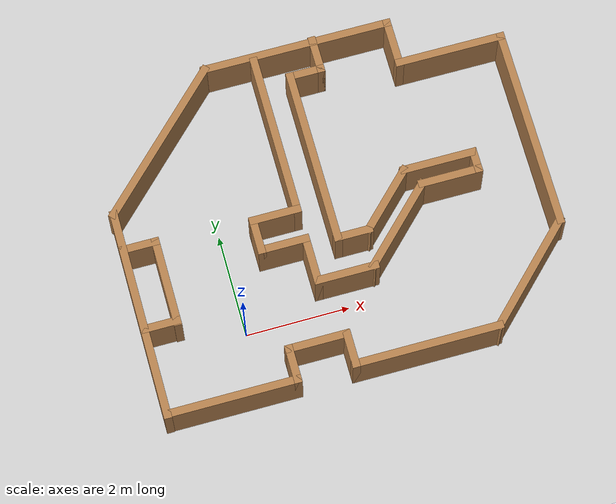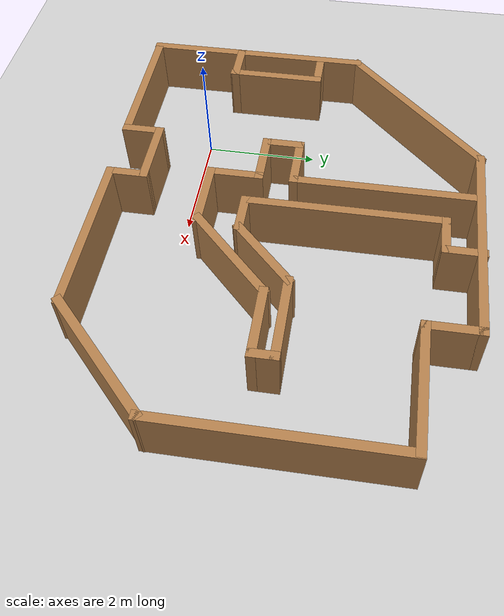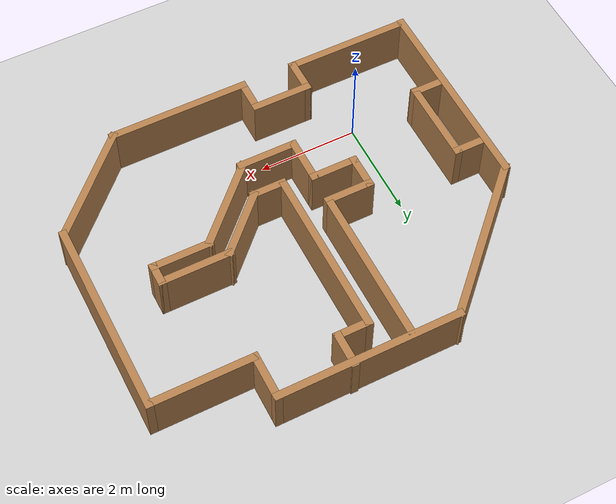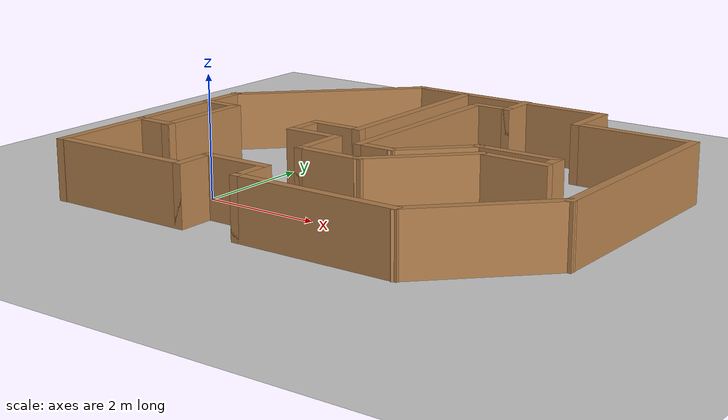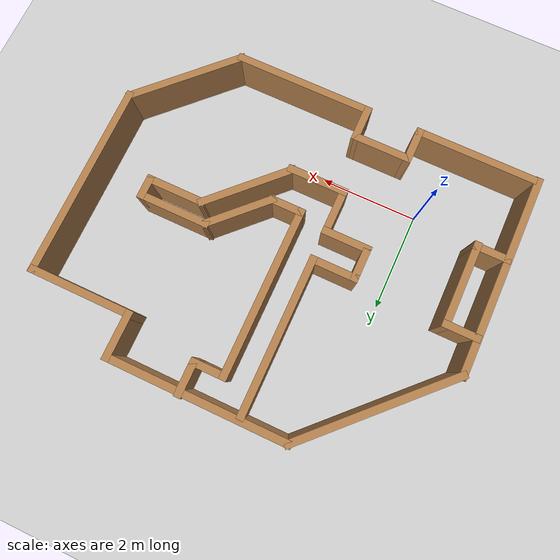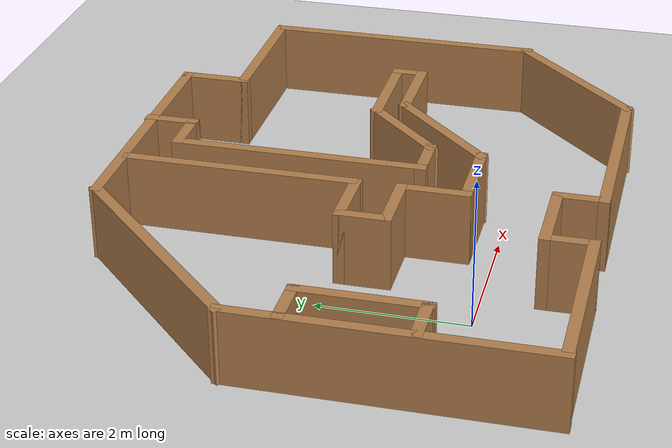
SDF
<sdf version="1.10">
 <world name="empty">
  <physics name="8ms" type="ode">
   <max_step_size>0.008</max_step_size>
   <real_time_factor>1</real_time_factor>
   <real_time_update_rate>125</real_time_update_rate>
  </physics>
  <plugin name="gz::sim::systems::Physics" filename="gz-sim-physics-system"/>
  <plugin name="gz::sim::systems::UserCommands" filename="gz-sim-user-commands-system"/>
  <plugin name="gz::sim::systems::SceneBroadcaster" filename="gz-sim-scene-broadcaster-system"/>
  <plugin name="gz::sim::systems::Contact" filename="gz-sim-contact-system"/>
  <plugin name="gz::sim::systems::Sensors" filename="gz-sim-sensors-system">
   <render_engine>ogre2</render_engine>
  </plugin>
  <plugin name="gz::sim::systems::Imu" filename="gz-sim-imu-system"/>
  <plugin filename="gz-sim-navsat-system" name="gz::sim::systems::NavSat"/>
  <spherical_coordinates>
   <surface_model>EARTH_WGS84</surface_model>
   <world_frame_orientation>ENU</world_frame_orientation>
   <latitude_deg>47.478950</latitude_deg>
   <longitude_deg>19.057785</longitude_deg>
   <elevation>0</elevation>
   <heading_deg>0</heading_deg>
  </spherical_coordinates>
  <gravity>0 0 -9.8000000000000007</gravity>
  <magnetic_field>5.5644999999999998e-06 2.2875799999999999e-05 -4.2388400000000002e-05</magnetic_field>
  <atmosphere type="adiabatic"/>
  <scene>
   <ambient>0.400000006 0.400000006 0.400000006 1</ambient>
   <background>0.699999988 0.699999988 0.699999988 1</background>
   <shadows>false</shadows>
  </scene>
  <model name="ground_plane">
   <static>1</static>
   <link name="link">
    <collision name="collision">
     <geometry><plane><normal>0 0 1</normal><size>100 100</size></plane></geometry>
     <surface>
      <contact><collide_bitmask>65535</collide_bitmask></contact>
      <friction><ode><mu>100</mu><mu2>50</mu2></ode></friction>
     </surface>
    </collision>
    <visual name="visual">
     <cast_shadows>0</cast_shadows>
     <geometry><plane><normal>0 0 1</normal><size>100 100</size></plane></geometry>
     <material>
      <script><uri>file://media/materials/scripts/gazebo.material</uri><name>Gazebo/Grey</name></script>
     </material>
    </visual>
   </link>
  </model>
  <gravity>0 0 -9.8</gravity>
  <magnetic_field>6e-06 2.3e-05 -4.2e-05</magnetic_field>
  <atmosphere type="adiabatic"/>
  <physics name="3ms" type="ode">
   <max_step_size>0.003</max_step_size>
   <real_time_factor>1</real_time_factor>
  </physics>
  <scene><ambient>0.8 0.8 0.8 1</ambient><background>0.7 0.7 0.7 1</background><shadows>0</shadows></scene>
  <spherical_coordinates>
   <surface_model>EARTH_WGS84</surface_model>
   <latitude_deg>0</latitude_deg>
   <longitude_deg>0</longitude_deg>
   <elevation>0</elevation>
   <heading_deg>0</heading_deg>
  </spherical_coordinates>
  <model name="sim_house">
   <pose>2.16464 1.82515 0 0 -0 0</pose>
   <link name="Wall_0">
    <collision name="Wall_0_Collision">
     <geometry><box><size>2.5 0.15 1</size></box></geometry>
     <pose>0 0 0.5 0 -0 0</pose>
    </collision>
    <visual name="Wall_0_Visual">
     <pose>0 0 0.5 0 -0 0</pose>
     <geometry><box><size>2.5 0.15 1</size></box></geometry>
     <material>
      <script><uri>file://media/materials/scripts/gazebo.material</uri><name>Gazebo/Wood</name></script>
      <ambient>1 1 1 1</ambient>
     </material>
     <meta><layer>0</layer></meta>
    </visual>
    <pose>-2.70098 -3.18088 0 0 -0 0</pose>
   </link>
   <link name="Wall_1">
    <collision name="Wall_1_Collision">
     <geometry><box><size>0.75 0.15 1</size></box></geometry>
     <pose>0 0 0.5 0 -0 0</pose>
    </collision>
    <visual name="Wall_1_Visual">
     <pose>0 0 0.5 0 -0 0</pose>
     <geometry><box><size>0.75 0.15 1</size></box></geometry>
     <material>
      <script><uri>file://media/materials/scripts/gazebo.material</uri><name>Gazebo/Wood</name></script>
      <ambient>1 1 1 1</ambient>
     </material>
     <meta><layer>0</layer></meta>
    </visual>
    <pose>-1.52598 -2.88088 0 0 -0 1.5708</pose>
   </link>
   <link name="Wall_10">
    <collision name="Wall_10_Collision">
     <geometry><box><size>3.5 0.15 1</size></box></geometry>
     <pose>0 0 0.5 0 -0 0</pose>
    </collision>
    <visual name="Wall_10_Visual">
     <pose>0 0 0.5 0 -0 0</pose>
     <geometry><box><size>3.5 0.15 1</size></box></geometry>
     <material>
      <script><uri>file://media/materials/scripts/gazebo.material</uri><name>Gazebo/Wood</name></script>
      <ambient>1 1 1 1</ambient>
     </material>
     <meta><layer>0</layer></meta>
    </visual>
    <pose>-2.79863 1.99647 0 0 -0 -2.35619</pose>
   </link>
   <link name="Wall_11">
    <collision name="Wall_11_Collision">
     <geometry><box><size>4.153 0.15 1</size></box></geometry>
     <pose>0 0 0.5 0 -0 0</pose>
    </collision>
    <visual name="Wall_11_Visual">
     <pose>0 0 0.5 0 -0 0</pose>
     <geometry><box><size>4.153 0.15 1</size></box></geometry>
     <material>
      <script><uri>file://media/materials/scripts/gazebo.material</uri><name>Gazebo/Wood</name></script>
      <ambient>1 1 1 1</ambient>
     </material>
     <meta><layer>0</layer></meta>
    </visual>
    <pose>-3.98298 -1.18938 0 0 -0 -1.5708</pose>
   </link>
   <link name="Wall_13">
    <collision name="Wall_13_Collision">
     <geometry><box><size>0.75 0.15 1</size></box></geometry>
     <pose>0 0 0.5 0 -0 0</pose>
    </collision>
    <visual name="Wall_13_Visual">
     <pose>0 0 0.5 0 -0 0</pose>
     <geometry><box><size>0.75 0.15 1</size></box></geometry>
     <material>
      <script><uri>file://media/materials/scripts/gazebo.material</uri><name>Gazebo/Wood</name></script>
      <ambient>1 1 1 1</ambient>
     </material>
     <meta><layer>0</layer></meta>
    </visual>
    <pose>-3.6653 0.087099 0 0 -0 0</pose>
   </link>
   <link name="Wall_14">
    <collision name="Wall_14_Collision">
     <geometry><box><size>1.76432 0.15 1</size></box></geometry>
     <pose>0 0 0.5 0 -0 0</pose>
    </collision>
    <visual name="Wall_14_Visual">
     <pose>0 0 0.5 0 -0 0</pose>
     <geometry><box><size>1.76432 0.15 1</size></box></geometry>
     <material>
      <script><uri>file://media/materials/scripts/gazebo.material</uri><name>Gazebo/Wood</name></script>
      <ambient>1 1 1 1</ambient>
     </material>
     <meta><layer>0</layer></meta>
    </visual>
    <pose>-3.3653 -0.720058 0 0 -0 -1.5708</pose>
   </link>
   <link name="Wall_15">
    <collision name="Wall_15_Collision">
     <geometry><box><size>0.75 0.15 1</size></box></geometry>
     <pose>0 0 0.5 0 -0 0</pose>
    </collision>
    <visual name="Wall_15_Visual">
     <pose>0 0 0.5 0 -0 0</pose>
     <geometry><box><size>0.75 0.15 1</size></box></geometry>
     <material>
      <script><uri>file://media/materials/scripts/gazebo.material</uri><name>Gazebo/Wood</name></script>
      <ambient>1 1 1 1</ambient>
     </material>
     <meta><layer>0</layer></meta>
    </visual>
    <pose>-3.6653 -1.5071 0 0 -0 3.14159</pose>
   </link>
   <link name="Wall_17">
    <collision name="Wall_17_Collision">
     <geometry><box><size>3.25 0.15 1</size></box></geometry>
     <pose>0 0 0.5 0 -0 0</pose>
    </collision>
    <visual name="Wall_17_Visual">
     <pose>0 0 0.5 0 -0 0</pose>
     <geometry><box><size>3.25 0.15 1</size></box></geometry>
     <material>
      <script><uri>file://media/materials/scripts/gazebo.material</uri><name>Gazebo/Wood</name></script>
      <ambient>1 1 1 1</ambient>
     </material>
     <meta><layer>0</layer></meta>
    </visual>
    <pose>-0.665001 1.54843 0 0 -0 -1.5708</pose>
   </link>
   <link name="Wall_18">
    <collision name="Wall_18_Collision">
     <geometry><box><size>1 0.15 1</size></box></geometry>
     <pose>0 0 0.5 0 -0 0</pose>
    </collision>
    <visual name="Wall_18_Visual">
     <pose>0 0 0.5 0 -0 0</pose>
     <geometry><box><size>1 0.15 1</size></box></geometry>
     <material>
      <script><uri>file://media/materials/scripts/gazebo.material</uri><name>Gazebo/Wood</name></script>
      <ambient>1 1 1 1</ambient>
     </material>
     <meta><layer>0</layer></meta>
    </visual>
    <pose>-1.09 -0.001568 0 0 -0 3.14159</pose>
   </link>
   <link name="Wall_19">
    <collision name="Wall_19_Collision">
     <geometry><box><size>0.75 0.15 1</size></box></geometry>
     <pose>0 0 0.5 0 -0 0</pose>
    </collision>
    <visual name="Wall_19_Visual">
     <pose>0 0 0.5 0 -0 0</pose>
     <geometry><box><size>0.75 0.15 1</size></box></geometry>
     <material>
      <script><uri>file://media/materials/scripts/gazebo.material</uri><name>Gazebo/Wood</name></script>
      <ambient>1 1 1 1</ambient>
     </material>
     <meta><layer>0</layer></meta>
    </visual>
    <pose>-1.515 -0.301568 0 0 -0 -1.5708</pose>
   </link>
   <link name="Wall_2">
    <collision name="Wall_2_Collision">
     <geometry><box><size>1.25 0.15 1</size></box></geometry>
     <pose>0 0 0.5 0 -0 0</pose>
    </collision>
    <visual name="Wall_2_Visual">
     <pose>0 0 0.5 0 -0 0</pose>
     <geometry><box><size>1.25 0.15 1</size></box></geometry>
     <material>
      <script><uri>file://media/materials/scripts/gazebo.material</uri><name>Gazebo/Wood</name></script>
      <ambient>1 1 1 1</ambient>
     </material>
     <meta><layer>0</layer></meta>
    </visual>
    <pose>-0.975982 -2.58088 0 0 -0 0</pose>
   </link>
   <link name="Wall_20">
    <collision name="Wall_20_Collision">
     <geometry><box><size>1 0.15 1</size></box></geometry>
     <pose>0 0 0.5 0 -0 0</pose>
    </collision>
    <visual name="Wall_20_Visual">
     <pose>0 0 0.5 0 -0 0</pose>
     <geometry><box><size>1 0.15 1</size></box></geometry>
     <material>
      <script><uri>file://media/materials/scripts/gazebo.material</uri><name>Gazebo/Wood</name></script>
      <ambient>1 1 1 1</ambient>
     </material>
     <meta><layer>0</layer></meta>
    </visual>
    <pose>-1.09 -0.601568 0 0 -0 0</pose>
   </link>
   <link name="Wall_21">
    <collision name="Wall_21_Collision">
     <geometry><box><size>1 0.15 1</size></box></geometry>
     <pose>0 0 0.5 0 -0 0</pose>
    </collision>
    <visual name="Wall_21_Visual">
     <pose>0 0 0.5 0 -0 0</pose>
     <geometry><box><size>1 0.15 1</size></box></geometry>
     <material>
      <script><uri>file://media/materials/scripts/gazebo.material</uri><name>Gazebo/Wood</name></script>
      <ambient>1 1 1 1</ambient>
     </material>
     <meta><layer>0</layer></meta>
    </visual>
    <pose>-0.665001 -1.02657 0 0 -0 -1.5708</pose>
   </link>
   <link name="Wall_22">
    <collision name="Wall_22_Collision">
     <geometry><box><size>1.25 0.15 1</size></box></geometry>
     <pose>0 0 0.5 0 -0 0</pose>
    </collision>
    <visual name="Wall_22_Visual">
     <pose>0 0 0.5 0 -0 0</pose>
     <geometry><box><size>1.25 0.15 1</size></box></geometry>
     <material>
      <script><uri>file://media/materials/scripts/gazebo.material</uri><name>Gazebo/Wood</name></script>
      <ambient>1 1 1 1</ambient>
     </material>
     <meta><layer>0</layer></meta>
    </visual>
    <pose>-0.115001 -1.45157 0 0 -0 0</pose>
   </link>
   <link name="Wall_24">
    <collision name="Wall_24_Collision">
     <geometry><box><size>0.75 0.15 1</size></box></geometry>
     <pose>0 0 0.5 0 -0 0</pose>
    </collision>
    <visual name="Wall_24_Visual">
     <pose>0 0 0.5 0 -0 0</pose>
     <geometry><box><size>0.75 0.15 1</size></box></geometry>
     <material>
      <script><uri>file://media/materials/scripts/gazebo.material</uri><name>Gazebo/Wood</name></script>
      <ambient>1 1 1 1</ambient>
     </material>
     <meta><layer>0</layer></meta>
    </visual>
    <pose>0.215018 -0.740877 0 0 -0 3.14159</pose>
   </link>
   <link name="Wall_25">
    <collision name="Wall_25_Collision">
     <geometry><box><size>3.5 0.15 1</size></box></geometry>
     <pose>0 0 0.5 0 -0 0</pose>
    </collision>
    <visual name="Wall_25_Visual">
     <pose>0 0 0.5 0 -0 0</pose>
     <geometry><box><size>3.5 0.15 1</size></box></geometry>
     <material>
      <script><uri>file://media/materials/scripts/gazebo.material</uri><name>Gazebo/Wood</name></script>
      <ambient>1 1 1 1</ambient>
     </material>
     <meta><layer>0</layer></meta>
    </visual>
    <pose>-0.084982 0.934123 0 0 -0 1.5708</pose>
   </link>
   <link name="Wall_29">
    <collision name="Wall_29_Collision">
     <geometry><box><size>1.5 0.15 1</size></box></geometry>
     <pose>0 0 0.5 0 -0 0</pose>
    </collision>
    <visual name="Wall_29_Visual">
     <pose>0 0 0.5 0 -0 0</pose>
     <geometry><box><size>1.5 0.15 1</size></box></geometry>
     <material>
      <script><uri>file://media/materials/scripts/gazebo.material</uri><name>Gazebo/Wood</name></script>
      <ambient>1 1 1 1</ambient>
     </material>
     <meta><layer>0</layer></meta>
    </visual>
    <pose>0.992315 -0.26358 0 0 -0 0.785398</pose>
   </link>
   <link name="Wall_3">
    <collision name="Wall_3_Collision">
     <geometry><box><size>0.75 0.15 1</size></box></geometry>
     <pose>0 0 0.5 0 -0 0</pose>
    </collision>
    <visual name="Wall_3_Visual">
     <pose>0 0 0.5 0 -0 0</pose>
     <geometry><box><size>0.75 0.15 1</size></box></geometry>
     <material>
      <script><uri>file://media/materials/scripts/gazebo.material</uri><name>Gazebo/Wood</name></script>
      <ambient>1 1 1 1</ambient>
     </material>
     <meta><layer>0</layer></meta>
    </visual>
    <pose>-0.425982 -2.88088 0 0 -0 -1.5708</pose>
   </link>
   <link name="Wall_30">
    <collision name="Wall_30_Collision">
     <geometry><box><size>1.5 0.15 1</size></box></geometry>
     <pose>0 0 0.5 0 -0 0</pose>
    </collision>
    <visual name="Wall_30_Visual">
     <pose>0 0 0.5 0 -0 0</pose>
     <geometry><box><size>1.5 0.15 1</size></box></geometry>
     <material>
      <script><uri>file://media/materials/scripts/gazebo.material</uri><name>Gazebo/Wood</name></script>
      <ambient>1 1 1 1</ambient>
     </material>
     <meta><layer>0</layer></meta>
    </visual>
    <pose>2.14461 0.213717 0 0 -0 0</pose>
   </link>
   <link name="Wall_31">
    <collision name="Wall_31_Collision">
     <geometry><box><size>0.5 0.15 1</size></box></geometry>
     <pose>0 0 0.5 0 -0 0</pose>
    </collision>
    <visual name="Wall_31_Visual">
     <pose>0 0 0.5 0 -0 0</pose>
     <geometry><box><size>0.5 0.15 1</size></box></geometry>
     <material>
      <script><uri>file://media/materials/scripts/gazebo.material</uri><name>Gazebo/Wood</name></script>
      <ambient>1 1 1 1</ambient>
     </material>
     <meta><layer>0</layer></meta>
    </visual>
    <pose>2.81961 0.038717 0 0 -0 -1.5708</pose>
   </link>
   <link name="Wall_32">
    <collision name="Wall_32_Collision">
     <geometry><box><size>1.25 0.15 1</size></box></geometry>
     <pose>0 0 0.5 0 -0 0</pose>
    </collision>
    <visual name="Wall_32_Visual">
     <pose>0 0 0.5 0 -0 0</pose>
     <geometry><box><size>1.25 0.15 1</size></box></geometry>
     <material>
      <script><uri>file://media/materials/scripts/gazebo.material</uri><name>Gazebo/Wood</name></script>
      <ambient>1 1 1 1</ambient>
     </material>
     <meta><layer>0</layer></meta>
    </visual>
    <pose>2.26961 -0.136283 0 0 -0 3.14159</pose>
   </link>
   <link name="Wall_33">
    <collision name="Wall_33_Collision">
     <geometry><box><size>2 0.15 1</size></box></geometry>
     <pose>0 0 0.5 0 -0 0</pose>
    </collision>
    <visual name="Wall_33_Visual">
     <pose>0 0 0.5 0 -0 0</pose>
     <geometry><box><size>2 0.15 1</size></box></geometry>
     <material>
      <script><uri>file://media/materials/scripts/gazebo.material</uri><name>Gazebo/Wood</name></script>
      <ambient>1 1 1 1</ambient>
     </material>
     <meta><layer>0</layer></meta>
    </visual>
    <pose>1.06554 -0.790357 0 0 -0 -2.35619</pose>
   </link>
   <link name="Wall_35">
    <collision name="Wall_35_Collision">
     <geometry><box><size>0.75 0.15 1</size></box></geometry>
     <pose>0 0 0.5 0 -0 0</pose>
    </collision>
    <visual name="Wall_35_Visual">
     <pose>0 0 0.5 0 -0 0</pose>
     <geometry><box><size>0.75 0.15 1</size></box></geometry>
     <material>
      <script><uri>file://media/materials/scripts/gazebo.material</uri><name>Gazebo/Wood</name></script>
      <ambient>1 1 1 1</ambient>
     </material>
     <meta><layer>0</layer></meta>
    </visual>
    <pose>0.215018 2.60912 0 0 -0 0</pose>
   </link>
   <link name="Wall_36">
    <collision name="Wall_36_Collision">
     <geometry><box><size>0.75 0.15 1</size></box></geometry>
     <pose>0 0 0.5 0 -0 0</pose>
    </collision>
    <visual name="Wall_36_Visual">
     <pose>0 0 0.5 0 -0 0</pose>
     <geometry><box><size>0.75 0.15 1</size></box></geometry>
     <material>
      <script><uri>file://media/materials/scripts/gazebo.material</uri><name>Gazebo/Wood</name></script>
      <ambient>1 1 1 1</ambient>
     </material>
     <meta><layer>0</layer></meta>
    </visual>
    <pose>0.515018 2.90912 0 0 -0 1.5708</pose>
   </link>
   <link name="Wall_4">
    <collision name="Wall_4_Collision">
     <geometry><box><size>2.89732 0.15 1</size></box></geometry>
     <pose>0 0 0.5 0 -0 0</pose>
    </collision>
    <visual name="Wall_4_Visual">
     <pose>0 0 0.5 0 -0 0</pose>
     <geometry><box><size>2.89732 0.15 1</size></box></geometry>
     <material>
      <script><uri>file://media/materials/scripts/gazebo.material</uri><name>Gazebo/Wood</name></script>
      <ambient>1 1 1 1</ambient>
     </material>
     <meta><layer>0</layer></meta>
    </visual>
    <pose>0.947676 -3.18088 0 0 -0 0</pose>
   </link>
   <link name="Wall_5">
    <collision name="Wall_5_Collision">
     <geometry><box><size>2.5 0.15 1</size></box></geometry>
     <pose>0 0 0.5 0 -0 0</pose>
    </collision>
    <visual name="Wall_5_Visual">
     <pose>0 0 0.5 0 -0 0</pose>
     <geometry><box><size>2.5 0.15 1</size></box></geometry>
     <material>
      <script><uri>file://media/materials/scripts/gazebo.material</uri><name>Gazebo/Wood</name></script>
      <ambient>1 1 1 1</ambient>
     </material>
     <meta><layer>0</layer></meta>
    </visual>
    <pose>3.15218 -2.35003 0 0 -0 0.785398</pose>
   </link>
   <link name="Wall_6">
    <collision name="Wall_6_Collision">
     <geometry><box><size>4 0.15 1</size></box></geometry>
     <pose>0 0 0.5 0 -0 0</pose>
    </collision>
    <visual name="Wall_6_Visual">
     <pose>0 0 0.5 0 -0 0</pose>
     <geometry><box><size>4 0.15 1</size></box></geometry>
     <material>
      <script><uri>file://media/materials/scripts/gazebo.material</uri><name>Gazebo/Wood</name></script>
      <ambient>1 1 1 1</ambient>
     </material>
     <meta><layer>0</layer></meta>
    </visual>
    <pose>3.99824 0.405824 0 0 -0 1.5708</pose>
   </link>
   <link name="Wall_7">
    <collision name="Wall_7_Collision">
     <geometry><box><size>2.14732 0.15 1</size></box></geometry>
     <pose>0 0 0.5 0 -0 0</pose>
    </collision>
    <visual name="Wall_7_Visual">
     <pose>0 0 0.5 0 -0 0</pose>
     <geometry><box><size>2.14732 0.15 1</size></box></geometry>
     <material>
      <script><uri>file://media/materials/scripts/gazebo.material</uri><name>Gazebo/Wood</name></script>
      <ambient>1 1 1 1</ambient>
     </material>
     <meta><layer>0</layer></meta>
    </visual>
    <pose>2.98438 2.33082 0 0 -0 3.14159</pose>
   </link>
   <link name="Wall_8">
    <collision name="Wall_8_Collision">
     <geometry><box><size>1 0.15 1</size></box></geometry>
     <pose>0 0 0.5 0 -0 0</pose>
    </collision>
    <visual name="Wall_8_Visual">
     <pose>0 0 0.5 0 -0 0</pose>
     <geometry><box><size>1 0.15 1</size></box></geometry>
     <material>
      <script><uri>file://media/materials/scripts/gazebo.material</uri><name>Gazebo/Wood</name></script>
      <ambient>1 1 1 1</ambient>
     </material>
     <meta><layer>0</layer></meta>
    </visual>
    <pose>1.98572 2.75582 0 0 -0 1.5708</pose>
   </link>
   <link name="Wall_9">
    <collision name="Wall_9_Collision">
     <geometry><box><size>3.75 0.15 1</size></box></geometry>
     <pose>0 0 0.5 0 -0 0</pose>
    </collision>
    <visual name="Wall_9_Visual">
     <pose>0 0 0.5 0 -0 0</pose>
     <geometry><box><size>3.75 0.15 1</size></box></geometry>
     <material>
      <script><uri>file://media/materials/scripts/gazebo.material</uri><name>Gazebo/Wood</name></script>
      <ambient>1 1 1 1</ambient>
     </material>
     <meta><layer>0</layer></meta>
    </visual>
    <pose>0.185719 3.18082 0 0 -0 3.14159</pose>
   </link>
   <static>1</static>
  </model>
  <light name="sun" type="directional">
   <pose>0 0 10 0 0 0</pose>
   <cast_shadows>false</cast_shadows>
   <intensity>1</intensity>
   <direction>-0.5 0.10000000000000001 -0.90000000000000002</direction>
   <diffuse>0.800000012 0.800000012 0.800000012 1</diffuse>
   <specular>0.200000003 0.200000003 0.200000003 1</specular>
   <attenuation>
    <range>1000</range>
    <linear>0.0099999997764825821</linear>
    <constant>0.89999997615814209</constant>
    <quadratic>0.0010000000474974513</quadratic>
   </attenuation>
   <spot><inner_angle>0</inner_angle><outer_angle>0</outer_angle><falloff>0</falloff></spot>
  </light>
 </world>
</sdf>
